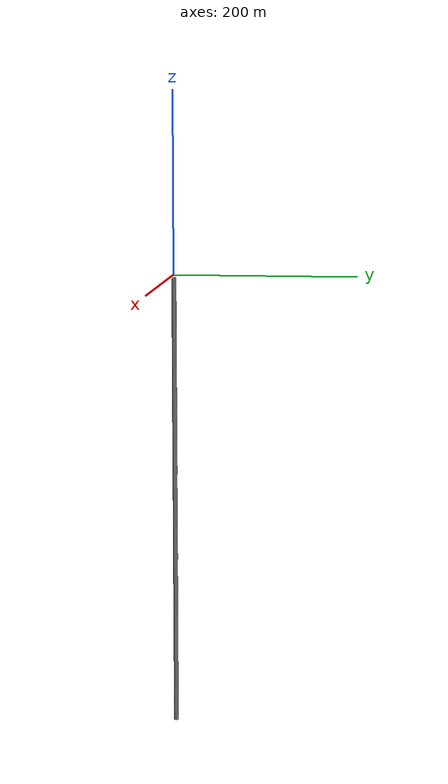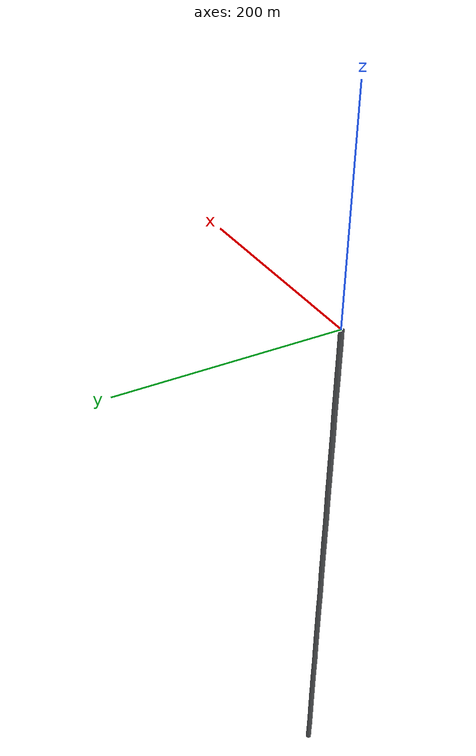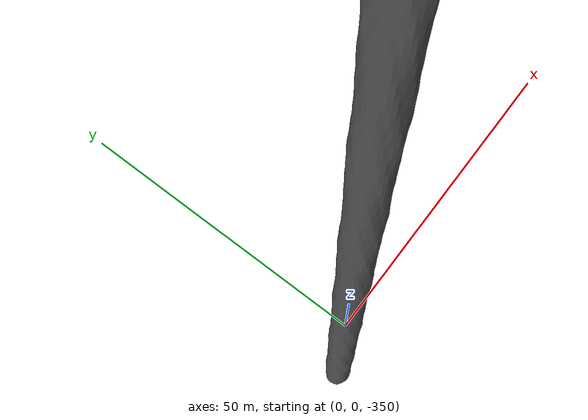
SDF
<?xml version="1.0"?>
<sdf version="1.6">
  <model name="shaft_rock_500m">
    <static>true</static>
    <link name="rock_shell">
      <collision name="collision">
        <geometry><mesh><uri>model://shaft_rock_500m/meshes/shaft_rock_inner.obj</uri></mesh></geometry>
        <surface>
          <friction><ode><mu>1.0</mu><mu2>1.0</mu2></ode></friction>
          <contact><ode><kp>1000000</kp><kd>100</kd></ode></contact>
        </surface>
      </collision>
      <visual name="visual">
        <geometry><mesh><uri>model://shaft_rock_500m/meshes/shaft_rock_inner.obj</uri></mesh></geometry>
        <material>
          <ambient>0.20 0.21 0.22 1</ambient>
          <diffuse>0.36 0.37 0.38 1</diffuse>
          <specular>0.025 0.025 0.025 1</specular>
        </material>
      </visual>
    </link>
  </model>
</sdf>
